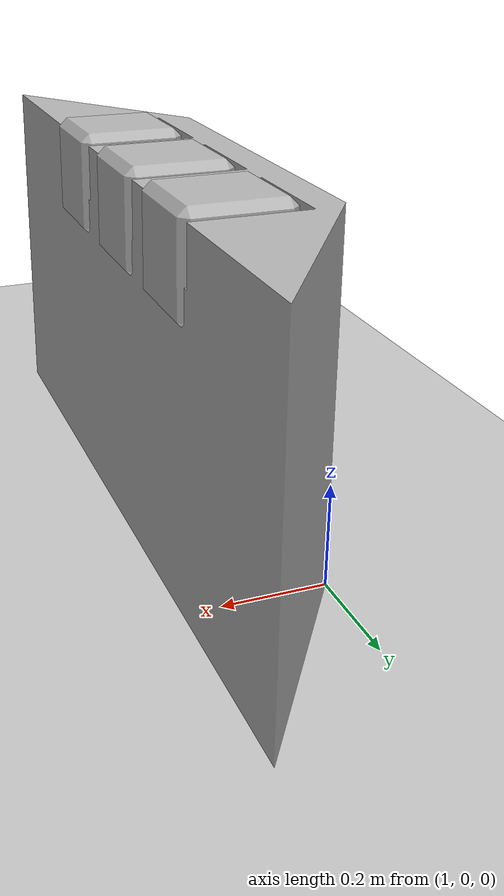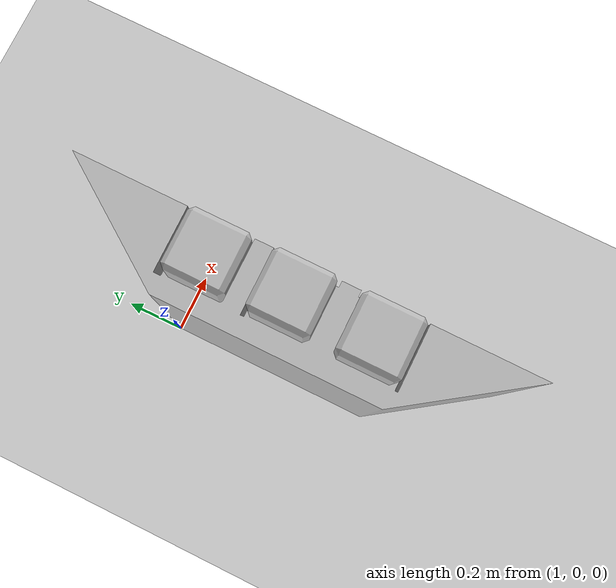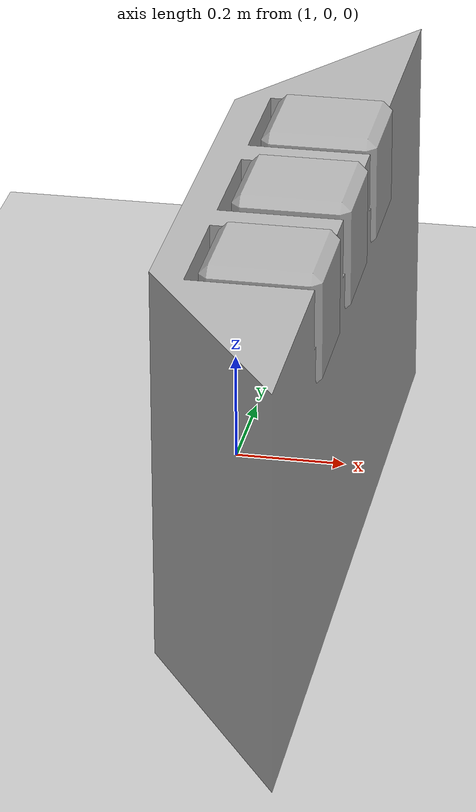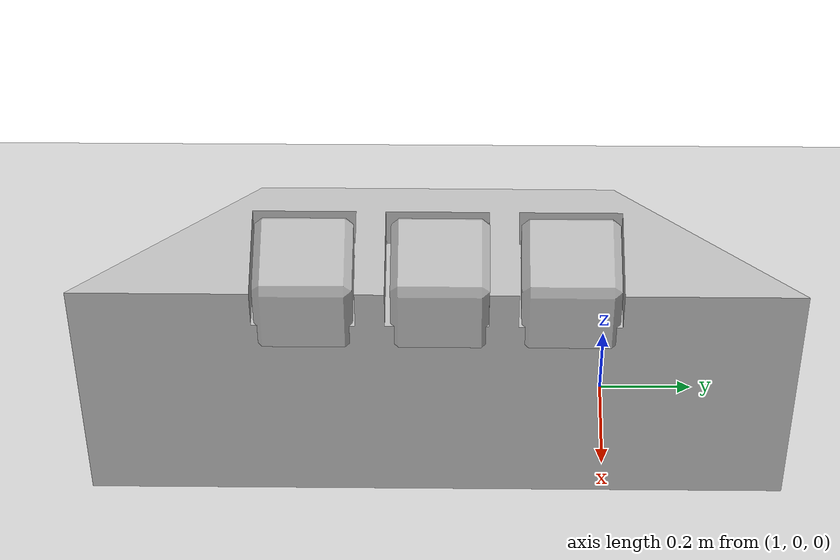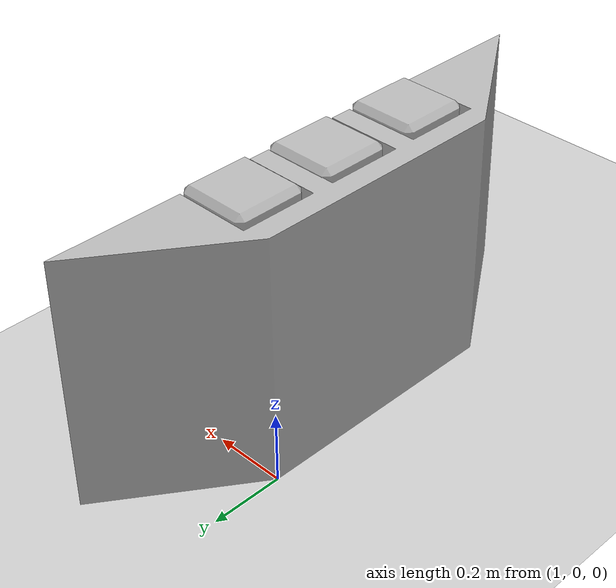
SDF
<?xml version="1.0" ?>

<sdf version="1.5">
    <world name="default">
        <!-- Target real time factor is the product of max_step_size and real_time_update_rate -->
        <!-- Negative real_time_update_rate means that Gazebo will run as fast as possible -->
        <physics type="ode">
            <max_step_size>0.001</max_step_size>
            <real_time_update_rate>1000</real_time_update_rate>
        </physics>

        <include>
            <uri>model://ground_plane</uri>
        </include>

        <light name='sun' type='directional'>
            <cast_shadows>1</cast_shadows>
            <pose>0 0 10 0 -0 0</pose>
            <diffuse>0.8 0.8 0.8 1</diffuse>
            <specular>0.2 0.2 0.2 1</specular>
            <attenuation>
                <range>1000</range>
                <constant>0.9</constant>
                <linear>0.01</linear>
                <quadratic>0.001</quadratic>
            </attenuation>
            <direction>-0.5 0.1 -0.9</direction>
        </light>

        <model name='stone2'>
            <pose>1.17798 -0.350676 0.618368 0 0 0</pose>
            <link name='stone_link2'>
                <inertial>
                    <mass>0.590</mass>
                    <inertia>
                        <ixx>0.004</ixx>
                        <ixy>0.0</ixy>
                        <ixz>0.0</ixz>
                        <iyy>0.004</iyy>
                        <iyz>0.0</iyz>
                        <izz>0.004</izz>
                    </inertia>
                </inertial>
                <visual name='visual'>
                    <geometry>
                        <mesh>
                            <uri>model://rm_gazebo/worlds/stone/stone.dae</uri>
                            <scale>1 1 1</scale>
                        </mesh>
                    </geometry>
                    <material>
                        <lighting>0</lighting>
                    </material>
                </visual>
                <collision name='collision'>
                    <geometry>
                        <mesh>
                            <uri>model://rm_gazebo/worlds/stone/stone.dae</uri>
                            <scale>1 1 1</scale>
                        </mesh>
                    </geometry>
                    <max_contacts>10</max_contacts>
                    <surface>
                        <bounce/>
                        <friction>
                            <ode/>
                        </friction>
                        <contact>
                            <ode/>
                        </contact>
                    </surface>
                </collision>
                <velocity_decay>
                    <linear>0</linear>
                    <angular>0</angular>
                </velocity_decay>
                <self_collide>0</self_collide>
                <kinematic>0</kinematic>
                <gravity>1</gravity>
            </link>
        </model>

        <model name='stone3'>
            <pose>1.17798 -0.086676 0.618368 0 0 0</pose>
            <link name='stone_link3'>
                <inertial>
                    <mass>0.590</mass>
                    <inertia>
                        <ixx>0.004</ixx>
                        <ixy>0.0</ixy>
                        <ixz>0.0</ixz>
                        <iyy>0.004</iyy>
                        <iyz>0.0</iyz>
                        <izz>0.004</izz>
                    </inertia>
                </inertial>
                <visual name='visual'>
                    <geometry>
                        <mesh>
                            <uri>model://rm_gazebo/worlds/stone/stone.dae</uri>
                            <scale>1 1 1</scale>
                        </mesh>
                    </geometry>
                    <material>
                        <lighting>0</lighting>
                    </material>
                </visual>
                <collision name='collision'>
                    <geometry>
                        <mesh>
                            <uri>model://rm_gazebo/worlds/stone/stone.dae</uri>
                            <scale>1 1 1</scale>
                        </mesh>
                    </geometry>
                    <max_contacts>10</max_contacts>
                    <surface>
                        <bounce/>
                        <friction>
                            <ode/>
                        </friction>
                        <contact>
                            <ode/>
                        </contact>
                    </surface>
                </collision>
                <velocity_decay>
                    <linear>0</linear>
                    <angular>0</angular>
                </velocity_decay>
                <self_collide>0</self_collide>
                <kinematic>0</kinematic>
                <gravity>1</gravity>
            </link>
        </model>

        <model name='stone1'>
            <pose>1.17798 -0.626676 0.618368 0 0 0</pose>
            <link name='stone_link1'>
                <inertial>
                    <mass>0.590</mass>
                    <inertia>
                        <ixx>0.004</ixx>
                        <ixy>0.0</ixy>
                        <ixz>0.0</ixz>
                        <iyy>0.004</iyy>
                        <iyz>0.0</iyz>
                        <izz>0.004</izz>
                    </inertia>
                </inertial>
                <visual name='visual'>
                    <geometry>
                        <mesh>
                            <uri>model://rm_gazebo/worlds/stone/stone.dae</uri>
                            <scale>1 1 1</scale>
                        </mesh>
                    </geometry>
                    <material>
                        <lighting>0</lighting>
                    </material>
                </visual>
                <collision name='collision'>
                    <geometry>
                        <mesh>
                            <uri>model://rm_gazebo/worlds/stone/stone.dae</uri>
                            <scale>1 1 1</scale>
                        </mesh>
                    </geometry>
                    <max_contacts>10</max_contacts>
                    <surface>
                        <bounce/>
                        <friction>
                            <ode/>
                        </friction>
                        <contact>
                            <ode/>
                        </contact>
                    </surface>
                </collision>
                <velocity_decay>
                    <linear>0</linear>
                    <angular>0</angular>
                </velocity_decay>
                <self_collide>0</self_collide>
                <kinematic>0</kinematic>
                <gravity>1</gravity>
            </link>
        </model>

        <model name='small_resource'>
            <static>1</static>
            <static>1</static>
            <pose>1 0 0 0 0 3.14</pose>
            <link name='small_resource_link'>
                <visual name='visual'>
                    <geometry>
                        <mesh>
                            <uri>model://rm_gazebo/worlds/place/small_resource.stl</uri>
                            <scale>0.001 0.001 0.001</scale>
                        </mesh>
                    </geometry>
                </visual>
                <collision name='collision'>
                    <geometry>
                        <mesh>
                            <uri>model://rm_gazebo/worlds/place/small_resource.stl</uri>
                            <scale>0.001 0.001 0.001</scale>
                        </mesh>
                    </geometry>
                    <max_contacts>10</max_contacts>
                    <surface>
                        <bounce/>
                        <friction>
                            <ode/>
                        </friction>
                        <contact>
                            <ode/>
                        </contact>
                    </surface>
                </collision>
                <velocity_decay>
                    <linear>0</linear>
                    <angular>0</angular>
                </velocity_decay>
                <self_collide>0</self_collide>
                <kinematic>0</kinematic>
                <gravity>1</gravity>
            </link>
            <static>1</static>
        </model>
    </world>
</sdf>
